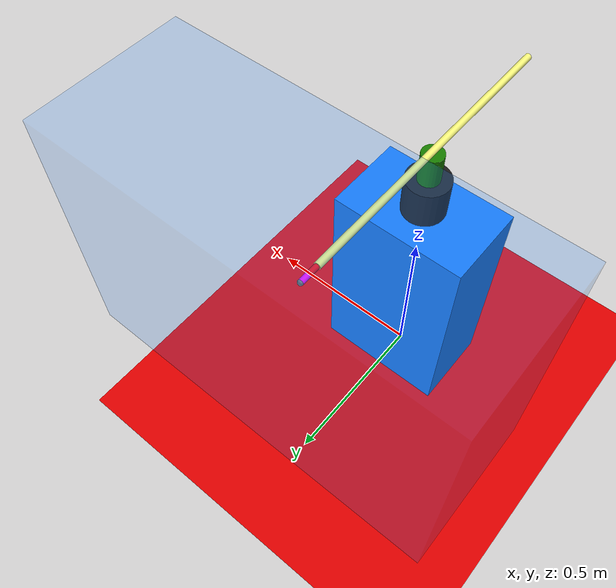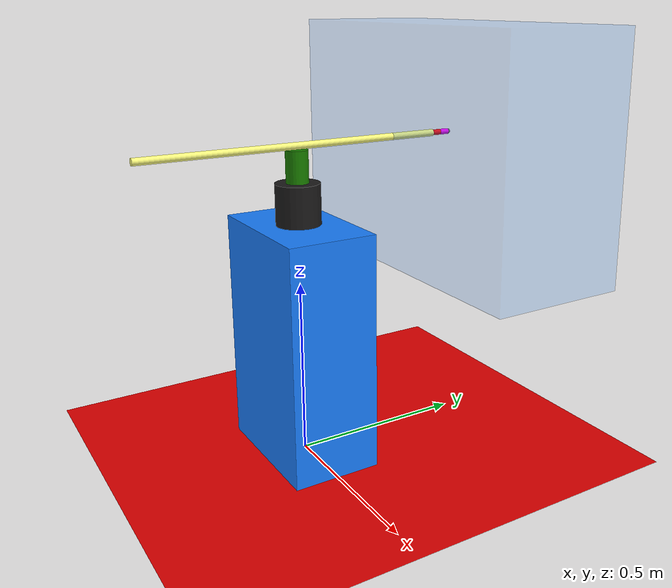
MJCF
<mujoco>
	<compiler autolimits="true" eulerseq="XYZ"/>
	<option gravity= "0 0 0"/>
	<contact>
        <exclude name="exclude_bounding_box" body1="link5" body2="bounding box"/>
		<exclude name="exclude_bounding_box1" body1="link4" body2="bounding box"/>
		<exclude name="exclude_bounding_box2" body1="prismatic" body2="bounding box"/>

	</contact>

	<worldbody>

        <light diffuse=".5 .5 .5" pos="0 0 3" dir="0 0 -2"/>
		<geom type="plane" size="2 2 0.1" rgba=".9 0 0 1"/>
		<body name="base" pos="0 0 0.3365" euler = "0 0 0">
			<geom type="box" size=".2 0.125 .3365 " rgba="0.1 0.5 1 1" />
			<body name = "link1" pos="0 0 0.394" euler = "0 0 0">
				<joint name="1" type="hinge" pos="0 0 -.0575" axis="0 0 1" limited= "true" range= "-180 180" />
				<geom type="cylinder" size=".0625 0.0575 " rgba=".110 .105 .105  1" />
				<body name= "link2" pos="0 0 0.1025" euler = "0 0 0">
					<joint name="2" type="hinge" pos="0 0 -0.045" axis="1 0 0" limited= "true" range= "-80 80"  />
					<geom type="cylinder" size=".03125 0.045 " rgba=".1 .5 0  1" />
					<body name= "prismatic" pos="0 0 0.055" euler = "90 0 0">
						<joint name="3" type="slide" pos="0 0 0" axis = "0 0 -1" limited= "true" range= "0 0.438" />
						<geom type="cylinder" size=".01 0.438 " rgba="1 1 .5  1" />
						<body name= "link4" pos="0 0 -.4515 " euler = "0 0 0">
							<joint name="4" type="hinge" pos="0 -0.012 .0135" axis="0 1 0" limited= "true" range= "-80 80"/>
							<geom type="cylinder" size=".008 0.0135 " rgba="1 0 0  1" />
							<body name= "link5" pos="0 0 -.027 " euler = "0 0 0">
								<joint name="5" type="hinge" pos="-0.0135 0 0" axis="1 0 0" limited= "true" range= "-80 80"/>
								<geom type="cylinder" size=".008 0.0135 " rgba="1 0 1  1" />
								<site name="tip" size="0.008" pos="0 0 -0.0135"/>
							</body>
						</body>
					</body>
				</body>
			</body>
		</body>
		<body name="bounding box" pos="0 0.5 0.85" euler = "0 0 0">
			<geom type="box" size=".5 0.2 .35 " rgba="0.1 0.5 1 .1" />

		</body>
	</worldbody>
	<actuator>
			<motor joint="1" name="t1" gear="1" ctrllimited="true" ctrlrange="-1 1"/>
            <motor joint="2" name="t2" gear="1" ctrllimited="true" ctrlrange="-10 10"/>
            <motor joint="3" name="t3" gear="1" ctrllimited="true" ctrlrange="-10 10"/>
            <motor joint="4" name="t4" gear="1" ctrllimited="true" ctrlrange="-1 1"/>  -->
            <motor joint="5" name="t5" gear="1" ctrllimited="true" ctrlrange="-10 10"/>
            -->
            -->
	</actuator>

</mujoco>

<!-- sensor/ jointlimitfrc (*) -->
